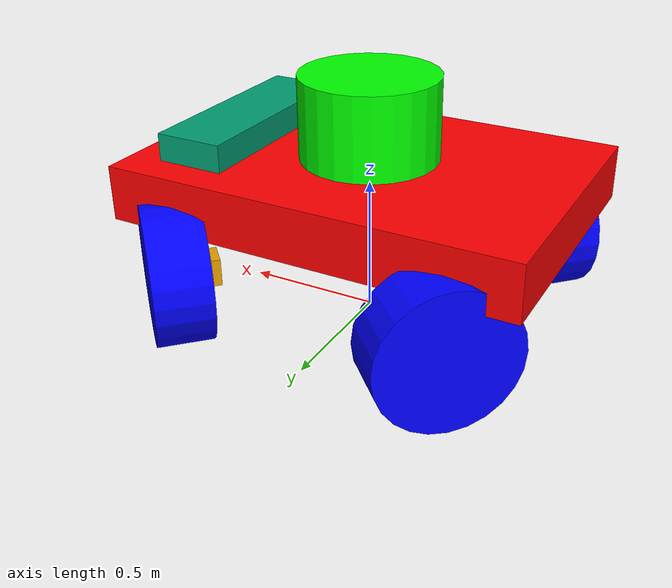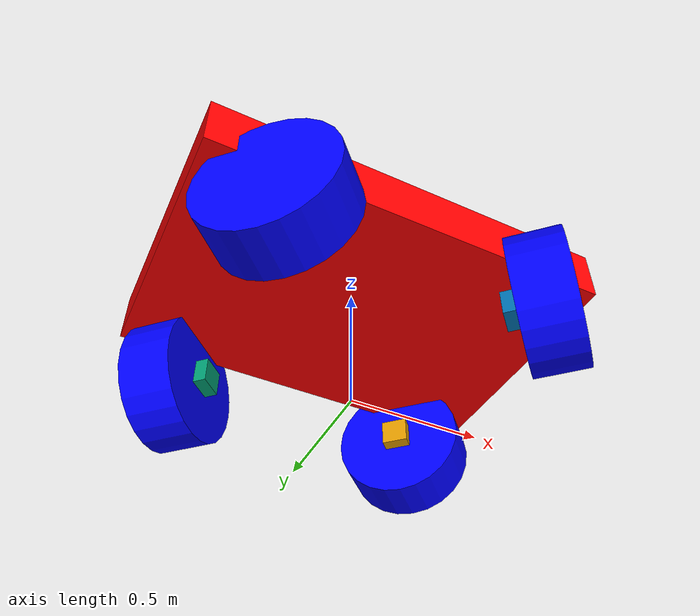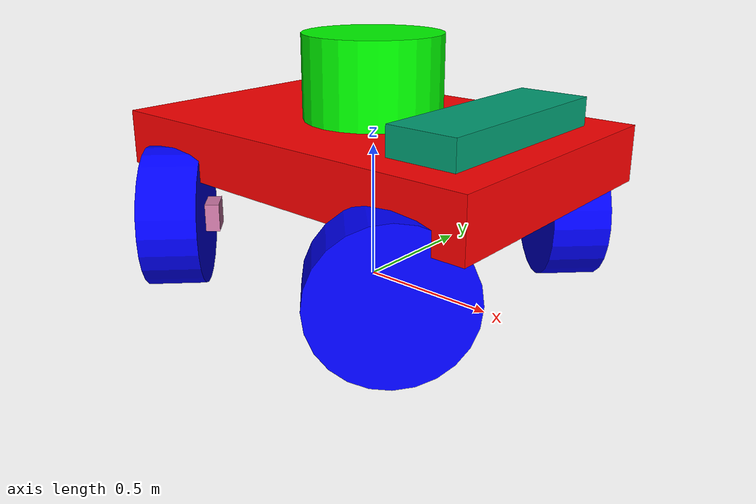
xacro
<?xml version="1.0"?>
<robot name="simple_robot" xmlns:xacro="http://www.ros.org/wiki/xacro">

        <link name="base_footprint"/>

        <material name="blue">
                <color rgba="0 0 1 1"/>
        </material>

        <material name="red">
                <color rgba="1 0 0 1"/>
        </material>

        <material name="green">
                <color rgba="0 1 0 1"/>
        </material>

        <material name="yellow">
                <color rgba="1 1 0 1"/>
        </material>

        <material name="magenta">
                <color rgba="1 0 1 1" />
        </material>

        <material name="cyan">
                <color rgba="0 1 1 1" />
        </material>

        <material name="white">
                <color rgba="1 1 1 1" />
        </material>

        <link name="base_link">
                <visual>
                        <geometry>
                                <box size="1.5 1 0.2"/>
                        </geometry>
                        <origin xyz="0 0 0" rpy="0 0 0"/>
                        <material name="red"/>
                </visual>

                <collision>
                        <geometry>
                                <box size="1.5 1 0.2"/>
                        </geometry>
                        <origin xyz="0 0 0" rpy="0 0 0"/>
                </collision>

                <inertial>
                        <mass value="10"/>
                        <inertia ixx="0.87" iyy="2.13" izz="2.58" ixy="0.0" ixz="0.0" iyz="0.0"/>
                </inertial>
        </link>

        <joint name="base_joint" type="fixed">
                <parent link="base_footprint"/>
                <child link="base_link"/>
                <origin xyz="0 0 0.5" rpy="0 0 ${pi}"/>
        </joint>

        <link name="front_visual">
                <visual>
                        <geometry>
                                <box size="0.25 0.75 0.1"/>
                        </geometry>
                </visual>
        </link>
        <joint name="front_visual_joint" type="fixed">
                <parent link="base_link"/>
                <child link="front_visual"/>
                <origin xyz="-0.5 0 0.15" rpy="0 0 0"/>
        </joint>

        <!-- WHEELS -->

        <link name="rf_link">
                <visual>
                        <geometry>
                                <cylinder radius="0.25" length="0.2"/>
                        </geometry>
                        <origin xyz="0 0 0" rpy="${pi/2} 0 0"/>
                        <material name="blue"/>
                </visual>
                <collision>
                        <geometry>
                                <cylinder radius="0.25" length="0.2"/>
                        </geometry>
                        <origin xyz="0 0 0" rpy="${pi/2} 0 0"/>
                </collision>

                <inertial>
                        <mass value="5"/>
                        <inertia ixx="0.01" iyy="0.01" izz="0.01" ixy="0.0" ixz="0.0" iyz="0.0"/>
                </inertial>
        </link>

        <link name="rf_rotation_link">
                <visual>
                        <geometry>
                                <box size="0.1 0.1 0.1"/>
                        </geometry>
                        <origin xyz="0 0 0" rpy="0 0 0"/>
                </visual>
        </link>

        <link name="rb_link">
                <visual>
                        <geometry>
                                <cylinder radius="0.25" length="0.2"/>
                        </geometry>
                        <origin xyz="0 0 0" rpy="${pi/2} 0 0"/>
                        <material name="blue"/>
                </visual>
                <collision>
                        <geometry>
                                <cylinder radius="0.25" length="0.2"/>
                        </geometry>
                        <origin xyz="0 0 0" rpy="${pi/2} 0 0"/>
                </collision>

                <inertial>
                        <mass value="5"/>
                        <inertia ixx="0.01" iyy="0.01" izz="0.01" ixy="0.0" ixz="0.0" iyz="0.0"/>
                </inertial>
        </link>

        <link name="rb_rotation_link">
                <visual>
                        <geometry>
                                <box size="0.1 0.1 0.1"/>
                        </geometry>
                        <origin xyz="0 0 0" rpy="0 0 0"/>
                </visual>
        </link>

        <link name="lf_link">
                <visual>
                        <geometry>
                                <cylinder radius="0.25" length="0.2"/>
                        </geometry>
                        <origin xyz="0 0 0" rpy="${pi/2} 0 0"/>
                        <material name="blue"/>
                </visual>
                <collision>
                        <geometry>
                                <cylinder radius="0.25" length="0.2"/>
                        </geometry>
                        <origin xyz="0 0 0" rpy="${pi/2} 0 0"/>
                </collision>

                <inertial>
                        <mass value="5"/>
                        <inertia ixx="0.01" iyy="0.01" izz="0.01" ixy="0.0" ixz="0.0" iyz="0.0"/>
                </inertial>
        </link>

        <link name="lf_rotation_link">
                <visual>
                        <geometry>
                                <box size="0.1 0.1 0.1"/>
                        </geometry>
                        <origin xyz="0 0 0" rpy="0 0 0"/>
                </visual>
        </link>

        <link name="lb_link">
                <visual>
                        <geometry>
                                <cylinder radius="0.25" length="0.2"/>
                        </geometry>
                        <origin xyz="0 0 0" rpy="${pi/2} 0 0"/>
                        <material name="blue"/>
                </visual>
                <collision>
                        <geometry>
                                <cylinder radius="0.25" length="0.2"/>
                        </geometry>
                        <origin xyz="0 0 0" rpy="${pi/2} 0 0"/>
                </collision>

                <inertial>
                        <mass value="5"/>
                        <inertia ixx="0.01" iyy="0.01" izz="0.01" ixy="0.0" ixz="0.0" iyz="0.0"/>
                </inertial>
        </link>

        <link name="lb_rotation_link">
                <visual>
                        <geometry>
                                <box size="0.1 0.1 0.1"/>
                        </geometry>
                        <origin xyz="0 0 0" rpy="0 0 0"/>
                </visual>
        </link>

        <joint name="rb_joint" type="continuous">
                <parent link="base_link"/>
                <child link="rb_link"/>
                <origin xyz="0.5 0.5 -0.25" rpy="0 0 ${-pi/4}"/>
                <axis xyz="0 1 0"/>
                <dynamics damping="1.0" friction="1.0"/>
                <limit effort="1000" velocity="1000"/>
        </joint>
        <joint name="rb_rotation_joint" type="fixed">
                <parent link="rb_link"/>
                <child link="rb_rotation_link"/>
                <origin xyz="0 -0.1 0" rpy="0 0 0"/>
        </joint>

        <joint name="rf_joint" type="continuous">
                <parent link="base_link"/>
                <child link="rf_link"/>
                <origin xyz="-0.5 0.5 -0.25" rpy="0 0 ${pi/4}"/>
                <axis xyz="0 1 0"/>
                <dynamics damping="1.0" friction="1.0"/>
                <limit effort="1000" velocity="1000"/>
        </joint>
        <joint name="rf_rotation_joint" type="fixed">
                <parent link="rf_link"/>
                <child link="rf_rotation_link"/>
                <origin xyz="0 -0.1 0" rpy="0 0 0"/>
        </joint>

        <joint name="lb_joint" type="continuous">
                <parent link="base_link"/>
                <child link="lb_link"/>
                <origin xyz="0.5 -0.5 -0.25" rpy="0 0 ${pi/4}"/>
                <axis xyz="0 1 0"/>
                <dynamics damping="1.0" friction="1.0"/>
                <limit effort="1000" velocity="1000"/>
        </joint>
        <joint name="lb_rotation_joint" type="fixed">
                <parent link="lb_link"/>
                <child link="lb_rotation_link"/>
                <origin xyz="0 0.1 0" rpy="0 0 0"/>
        </joint>

        <joint name="lf_joint" type="continuous">
                <parent link="base_link"/>
                <child link="lf_link"/>
                <origin xyz="-0.5 -0.5 -0.25" rpy="0 0 ${-pi/4}"/>
                <axis xyz="0 1 0"/>
                <dynamics damping="1.0" friction="1.0"/>
                <limit effort="1000" velocity="1000"/>
        </joint>
        <joint name="lf_rotation_joint" type="fixed">
                <parent link="lf_link"/>
                <child link="lf_rotation_link"/>
                <origin xyz="0 0.1 0" rpy="0 0 0"/>
        </joint>

        <!-- LIDAR -->
        <link name="lidar_link">
                <visual>
                        <origin xyz="0 0 0" rpy="0 0 0"/>
                        <geometry>
                                <cylinder length="0.3" radius="0.25"/>
                        </geometry>
                        <material name="green"/>
                </visual>
                <collision name="collision">
                        <origin xyz="0 0 0" rpy="0 0 0"/>
                        <geometry>
                                <cylinder length="0.3" radius="0.25"/>
                        </geometry>
                </collision>
        </link>

        <joint name="lidar_joint" type="fixed">
                <parent link="base_link"/>
                <child link="lidar_link"/>
                <origin xyz="0 0 0.25" rpy="0 0 0"/>
        </joint>

        <!-- ROS2 CONTROL -->

        <ros2_control name="RobotController" type="system">

                <hardware>
                        <plugin>micro_ros_hardware/MicroRosHardwareInterface</plugin>

                        <param name="cmd_topic">/wheel_commands</param>
                        <param name="state_topic">/micro_controller/joint_states</param>
                </hardware>

                <joint name="lf_joint">
                        <command_interface name="velocity"/>
                        <state_interface name="position"/>
                        <state_interface name="velocity"/>
                </joint>

                <joint name="rf_joint">
                        <command_interface name="velocity"/>
                        <state_interface name="position"/>
                        <state_interface name="velocity"/>
                </joint>

                <joint name="rb_joint">
                        <command_interface name="velocity"/>
                        <state_interface name="position"/>
                        <state_interface name="velocity"/>
                </joint>

                <joint name="lb_joint">
                        <command_interface name="velocity"/>
                        <state_interface name="position"/>
                        <state_interface name="velocity"/>
                </joint>

        </ros2_control>

</robot>
